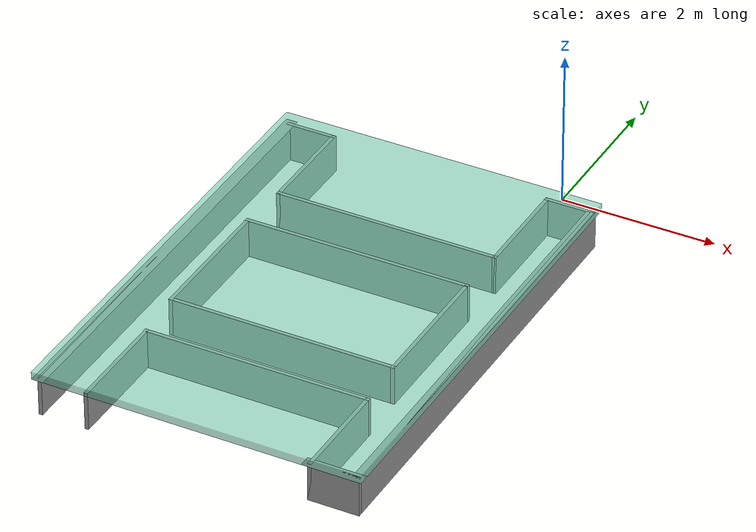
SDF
<?xml version='1.0'?>
<sdf version='1.7'>
  <model name='H_Techo'>
    <pose>-1.27 -3.329 0 0 -0 0</pose>
    <link name='Floor_1'>
      <collision name='Floor_1_Collision'>
        <geometry>
          <box>
            <size>4.2 6 0.1</size>
          </box>
        </geometry>
        <pose>0 0 0.05 0 -0 0</pose>
      </collision>
      <visual name='Floor_1_Visual'>
        <pose>0 0 0.05 0 -0 0</pose>
        <transparency>0.4</transparency>
        <geometry>
          <box>
            <size>4.2 6 0.1</size>
          </box>
        </geometry>
        <material>
          <script>
            <uri>file://media/materials/scripts/gazebo.material</uri>
            <name>Gazebo/Grey</name>
          </script>
          <ambient>0.435294 0.796078 0.67451 1</ambient>
        </material>
        <meta>
          <layer>1</layer>
        </meta>
      </visual>
      <pose>0 -0.329 0.5 0 -0 0</pose>
    </link>
    <link name='Wall_10'>
      <collision name='Wall_10_Collision'>
        <geometry>
          <box>
            <size>2.9 0.05 0.5</size>
          </box>
        </geometry>
        <pose>0 0 0.25 0 -0 0</pose>
      </collision>
      <visual name='Wall_10_Visual'>
        <pose>0 0 0.25 0 -0 0</pose>
        <geometry>
          <box>
            <size>2.9 0.05 0.5</size>
          </box>
        </geometry>
        <material>
          <script>
            <uri>file://media/materials/scripts/gazebo.material</uri>
            <name>Gazebo/Grey</name>
          </script>
          <ambient>1 1 1 1</ambient>
        </material>
        <meta>
          <layer>0</layer>
        </meta>
      </visual>
      <pose>0 1.246 0 0 -0 0</pose>
    </link>
    <link name='Wall_11'>
      <collision name='Wall_11_Collision'>
        <geometry>
          <box>
            <size>1.4 0.05 0.5</size>
          </box>
        </geometry>
        <pose>0 0 0.25 0 -0 0</pose>
      </collision>
      <visual name='Wall_11_Visual'>
        <pose>0 0 0.25 0 -0 0</pose>
        <geometry>
          <box>
            <size>1.4 0.05 0.5</size>
          </box>
        </geometry>
        <material>
          <script>
            <uri>file://media/materials/scripts/gazebo.material</uri>
            <name>Gazebo/Grey</name>
          </script>
          <ambient>1 1 1 1</ambient>
        </material>
        <meta>
          <layer>0</layer>
        </meta>
      </visual>
      <pose>1.425 1.921 0 0 -0 1.5708</pose>
    </link>
    <link name='Wall_12'>
      <collision name='Wall_12_Collision'>
        <geometry>
          <box>
            <size>0.65 0.05 0.5</size>
          </box>
        </geometry>
        <pose>0 0 0.25 0 -0 0</pose>
      </collision>
      <visual name='Wall_12_Visual'>
        <pose>0 0 0.25 0 -0 0</pose>
        <geometry>
          <box>
            <size>0.65 0.05 0.5</size>
          </box>
        </geometry>
        <material>
          <script>
            <uri>file://media/materials/scripts/gazebo.material</uri>
            <name>Gazebo/Grey</name>
          </script>
          <ambient>1 1 1 1</ambient>
        </material>
        <meta>
          <layer>0</layer>
        </meta>
      </visual>
      <pose>1.725 2.596 0 0 -0 0</pose>
    </link>
    <link name='Wall_13'>
      <collision name='Wall_13_Collision'>
        <geometry>
          <box>
            <size>5.9 0.05 0.5</size>
          </box>
        </geometry>
        <pose>0 0 0.25 0 -0 0</pose>
      </collision>
      <visual name='Wall_13_Visual'>
        <pose>0 0 0.25 0 -0 0</pose>
        <geometry>
          <box>
            <size>5.9 0.05 0.5</size>
          </box>
        </geometry>
        <material>
          <script>
            <uri>file://media/materials/scripts/gazebo.material</uri>
            <name>Gazebo/Grey</name>
          </script>
          <ambient>1 1 1 1</ambient>
        </material>
        <meta>
          <layer>0</layer>
        </meta>
      </visual>
      <pose>2.025 -0.329 0 0 -0 -1.5708</pose>
    </link>
    <link name='Wall_14'>
      <collision name='Wall_14_Collision'>
        <geometry>
          <box>
            <size>0.65 0.05 0.5</size>
          </box>
        </geometry>
        <pose>0 0 0.25 0 -0 0</pose>
      </collision>
      <visual name='Wall_14_Visual'>
        <pose>0 0 0.25 0 -0 0</pose>
        <geometry>
          <box>
            <size>0.65 0.05 0.5</size>
          </box>
        </geometry>
        <material>
          <script>
            <uri>file://media/materials/scripts/gazebo.material</uri>
            <name>Gazebo/Grey</name>
          </script>
          <ambient>1 1 1 1</ambient>
        </material>
        <meta>
          <layer>0</layer>
        </meta>
      </visual>
      <pose>1.725 -3.254 0 0 -0 3.14159</pose>
    </link>
    <link name='Wall_15'>
      <collision name='Wall_15_Collision'>
        <geometry>
          <box>
            <size>1.4 0.05 0.5</size>
          </box>
        </geometry>
        <pose>0 0 0.25 0 -0 0</pose>
      </collision>
      <visual name='Wall_15_Visual'>
        <pose>0 0 0.25 0 -0 0</pose>
        <geometry>
          <box>
            <size>1.4 0.05 0.5</size>
          </box>
        </geometry>
        <material>
          <script>
            <uri>file://media/materials/scripts/gazebo.material</uri>
            <name>Gazebo/Grey</name>
          </script>
          <ambient>1 1 1 1</ambient>
        </material>
        <meta>
          <layer>0</layer>
        </meta>
      </visual>
      <pose>1.425 -2.579 0 0 -0 1.5708</pose>
    </link>
    <link name='Wall_16'>
      <collision name='Wall_16_Collision'>
        <geometry>
          <box>
            <size>2.9 0.05 0.5</size>
          </box>
        </geometry>
        <pose>0 0 0.25 0 -0 0</pose>
      </collision>
      <visual name='Wall_16_Visual'>
        <pose>0 0 0.25 0 -0 0</pose>
        <geometry>
          <box>
            <size>2.9 0.05 0.5</size>
          </box>
        </geometry>
        <material>
          <script>
            <uri>file://media/materials/scripts/gazebo.material</uri>
            <name>Gazebo/Grey</name>
          </script>
          <ambient>1 1 1 1</ambient>
        </material>
        <meta>
          <layer>0</layer>
        </meta>
      </visual>
      <pose>0 -1.904 0 0 -0 3.14159</pose>
    </link>
    <link name='Wall_17'>
      <collision name='Wall_17_Collision'>
        <geometry>
          <box>
            <size>1.39979 0.05 0.5</size>
          </box>
        </geometry>
        <pose>0 0 0.25 0 -0 0</pose>
      </collision>
      <visual name='Wall_17_Visual'>
        <pose>0 0 0.25 0 -0 0</pose>
        <geometry>
          <box>
            <size>1.39979 0.05 0.5</size>
          </box>
        </geometry>
        <material>
          <script>
            <uri>file://media/materials/scripts/gazebo.material</uri>
            <name>Gazebo/Grey</name>
          </script>
          <ambient>1 1 1 1</ambient>
        </material>
        <meta>
          <layer>0</layer>
        </meta>
      </visual>
      <pose>-1.425 -2.579 0 0 -0 -1.5708</pose>
    </link>
    <link name='Wall_19'>
      <collision name='Wall_19_Collision'>
        <geometry>
          <box>
            <size>1.859 0.05 0.5</size>
          </box>
        </geometry>
        <pose>0 0 0.25 0 -0 0</pose>
      </collision>
      <visual name='Wall_19_Visual'>
        <pose>0 0 0.25 0 -0 0</pose>
        <geometry>
          <box>
            <size>1.859 0.05 0.5</size>
          </box>
        </geometry>
        <material>
          <script>
            <uri>file://media/materials/scripts/gazebo.material</uri>
            <name>Gazebo/Grey</name>
          </script>
          <ambient>1 1 1 1</ambient>
        </material>
        <meta>
          <layer>0</layer>
        </meta>
      </visual>
      <pose>-1.48 -0.3215 0 0 -0 -1.5708</pose>
    </link>
    <link name='Wall_20'>
      <collision name='Wall_20_Collision'>
        <geometry>
          <box>
            <size>2.927 0.05 0.5</size>
          </box>
        </geometry>
        <pose>0 0 0.25 0 -0 0</pose>
      </collision>
      <visual name='Wall_20_Visual'>
        <pose>0 0 0.25 0 -0 0</pose>
        <geometry>
          <box>
            <size>2.927 0.05 0.5</size>
          </box>
        </geometry>
        <material>
          <script>
            <uri>file://media/materials/scripts/gazebo.material</uri>
            <name>Gazebo/Grey</name>
          </script>
          <ambient>1 1 1 1</ambient>
        </material>
        <meta>
          <layer>0</layer>
        </meta>
      </visual>
      <pose>-0.0415 -1.226 0 0 -0 0</pose>
    </link>
    <link name='Wall_21'>
      <collision name='Wall_21_Collision'>
        <geometry>
          <box>
            <size>1.85906 0.05 0.5</size>
          </box>
        </geometry>
        <pose>0 0 0.25 0 -0 0</pose>
      </collision>
      <visual name='Wall_21_Visual'>
        <pose>0 0 0.25 0 -0 0</pose>
        <geometry>
          <box>
            <size>1.85906 0.05 0.5</size>
          </box>
        </geometry>
        <material>
          <script>
            <uri>file://media/materials/scripts/gazebo.material</uri>
            <name>Gazebo/Grey</name>
          </script>
          <ambient>1 1 1 1</ambient>
        </material>
        <meta>
          <layer>0</layer>
        </meta>
      </visual>
      <pose>1.397 -0.3215 0 0 -0 1.5708</pose>
    </link>
    <link name='Wall_22'>
      <collision name='Wall_22_Collision'>
        <geometry>
          <box>
            <size>2.927 0.05 0.5</size>
          </box>
        </geometry>
        <pose>0 0 0.25 0 -0 0</pose>
      </collision>
      <visual name='Wall_22_Visual'>
        <pose>0 0 0.25 0 -0 0</pose>
        <geometry>
          <box>
            <size>2.927 0.05 0.5</size>
          </box>
        </geometry>
        <material>
          <script>
            <uri>file://media/materials/scripts/gazebo.material</uri>
            <name>Gazebo/Grey</name>
          </script>
          <ambient>1 1 1 1</ambient>
        </material>
        <meta>
          <layer>0</layer>
        </meta>
      </visual>
      <pose>-0.0415 0.583 0 0 -0 3.14159</pose>
    </link>
    <link name='Wall_39'>
      <collision name='Wall_39_Collision'>
        <geometry>
          <box>
            <size>6 0.15 0</size>
          </box>
        </geometry>
        <pose>0 0 0 0 -0 0</pose>
      </collision>
      <visual name='Wall_39_Visual'>
        <pose>0 0 0 0 -0 0</pose>
        <geometry>
          <box>
            <size>6 0.15 0</size>
          </box>
        </geometry>
        <material>
          <script>
            <uri>file://media/materials/scripts/gazebo.material</uri>
            <name>Gazebo/Grey</name>
          </script>
          <ambient>1 1 1 1</ambient>
        </material>
        <meta>
          <layer>1</layer>
        </meta>
      </visual>
      <pose>-2.025 -0.329 0.5 0 -0 1.5708</pose>
    </link>
    <link name='Wall_45'>
      <collision name='Wall_45_Collision'>
        <geometry>
          <box>
            <size>6 0.15 0</size>
          </box>
        </geometry>
        <pose>0 0 0 0 -0 0</pose>
      </collision>
      <visual name='Wall_45_Visual'>
        <pose>0 0 0 0 -0 0</pose>
        <geometry>
          <box>
            <size>6 0.15 0</size>
          </box>
        </geometry>
        <material>
          <script>
            <uri>file://media/materials/scripts/gazebo.material</uri>
            <name>Gazebo/Grey</name>
          </script>
          <ambient>1 1 1 1</ambient>
        </material>
        <meta>
          <layer>1</layer>
        </meta>
      </visual>
      <pose>2.025 -0.329 0.5 0 -0 -1.5708</pose>
    </link>
    <link name='Wall_46'>
      <collision name='Wall_46_Collision'>
        <geometry>
          <box>
            <size>0.75 0.15 0</size>
          </box>
        </geometry>
        <pose>0 0 0 0 -0 0</pose>
      </collision>
      <visual name='Wall_46_Visual'>
        <pose>0 0 0 0 -0 0</pose>
        <geometry>
          <box>
            <size>0.75 0.15 0</size>
          </box>
        </geometry>
        <material>
          <script>
            <uri>file://media/materials/scripts/gazebo.material</uri>
            <name>Gazebo/Grey</name>
          </script>
          <ambient>1 1 1 1</ambient>
        </material>
        <meta>
          <layer>1</layer>
        </meta>
      </visual>
      <pose>1.725 -3.254 0.5 0 -0 3.14159</pose>
    </link>
    <link name='Wall_7'>
      <collision name='Wall_7_Collision'>
        <geometry>
          <box>
            <size>5.9 0.05 0.5</size>
          </box>
        </geometry>
        <pose>0 0 0.25 0 -0 0</pose>
      </collision>
      <visual name='Wall_7_Visual'>
        <pose>0 0 0.25 0 -0 0</pose>
        <geometry>
          <box>
            <size>5.9 0.05 0.5</size>
          </box>
        </geometry>
        <material>
          <script>
            <uri>file://media/materials/scripts/gazebo.material</uri>
            <name>Gazebo/Grey</name>
          </script>
          <ambient>1 1 1 1</ambient>
        </material>
        <meta>
          <layer>0</layer>
        </meta>
      </visual>
      <pose>-2.025 -0.329 0 0 -0 1.5708</pose>
    </link>
    <link name='Wall_8'>
      <collision name='Wall_8_Collision'>
        <geometry>
          <box>
            <size>0.65 0.05 0.5</size>
          </box>
        </geometry>
        <pose>0 0 0.25 0 -0 0</pose>
      </collision>
      <visual name='Wall_8_Visual'>
        <pose>0 0 0.25 0 -0 0</pose>
        <geometry>
          <box>
            <size>0.65 0.05 0.5</size>
          </box>
        </geometry>
        <material>
          <script>
            <uri>file://media/materials/scripts/gazebo.material</uri>
            <name>Gazebo/Grey</name>
          </script>
          <ambient>1 1 1 1</ambient>
        </material>
        <meta>
          <layer>0</layer>
        </meta>
      </visual>
      <pose>-1.725 2.596 0 0 -0 0</pose>
    </link>
    <link name='Wall_9'>
      <collision name='Wall_9_Collision'>
        <geometry>
          <box>
            <size>1.4 0.05 0.5</size>
          </box>
        </geometry>
        <pose>0 0 0.25 0 -0 0</pose>
      </collision>
      <visual name='Wall_9_Visual'>
        <pose>0 0 0.25 0 -0 0</pose>
        <geometry>
          <box>
            <size>1.4 0.05 0.5</size>
          </box>
        </geometry>
        <material>
          <script>
            <uri>file://media/materials/scripts/gazebo.material</uri>
            <name>Gazebo/Grey</name>
          </script>
          <ambient>1 1 1 1</ambient>
        </material>
        <meta>
          <layer>0</layer>
        </meta>
      </visual>
      <pose>-1.425 1.921 0 0 -0 -1.5708</pose>
    </link>
    <static>1</static>
  </model>
</sdf>
